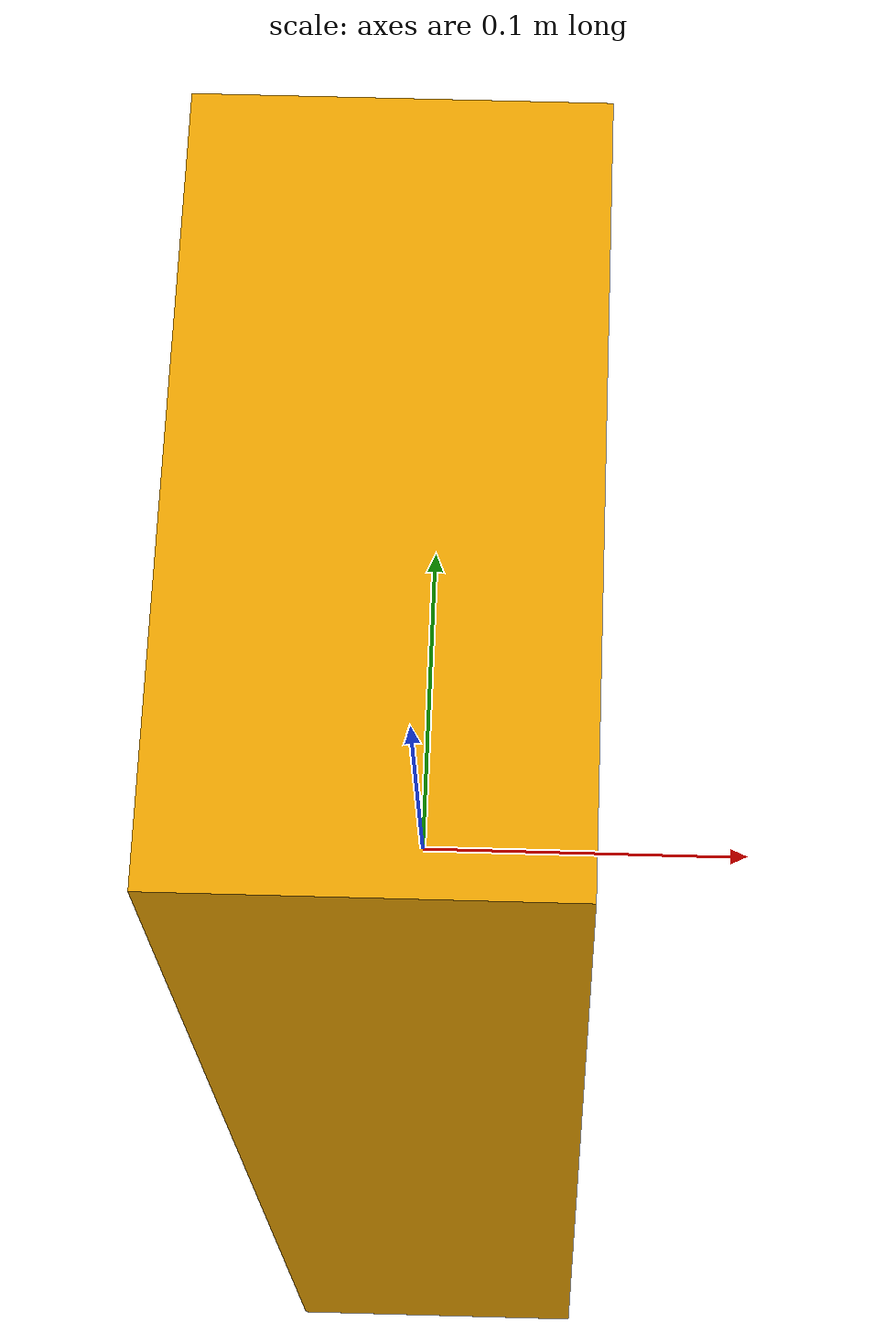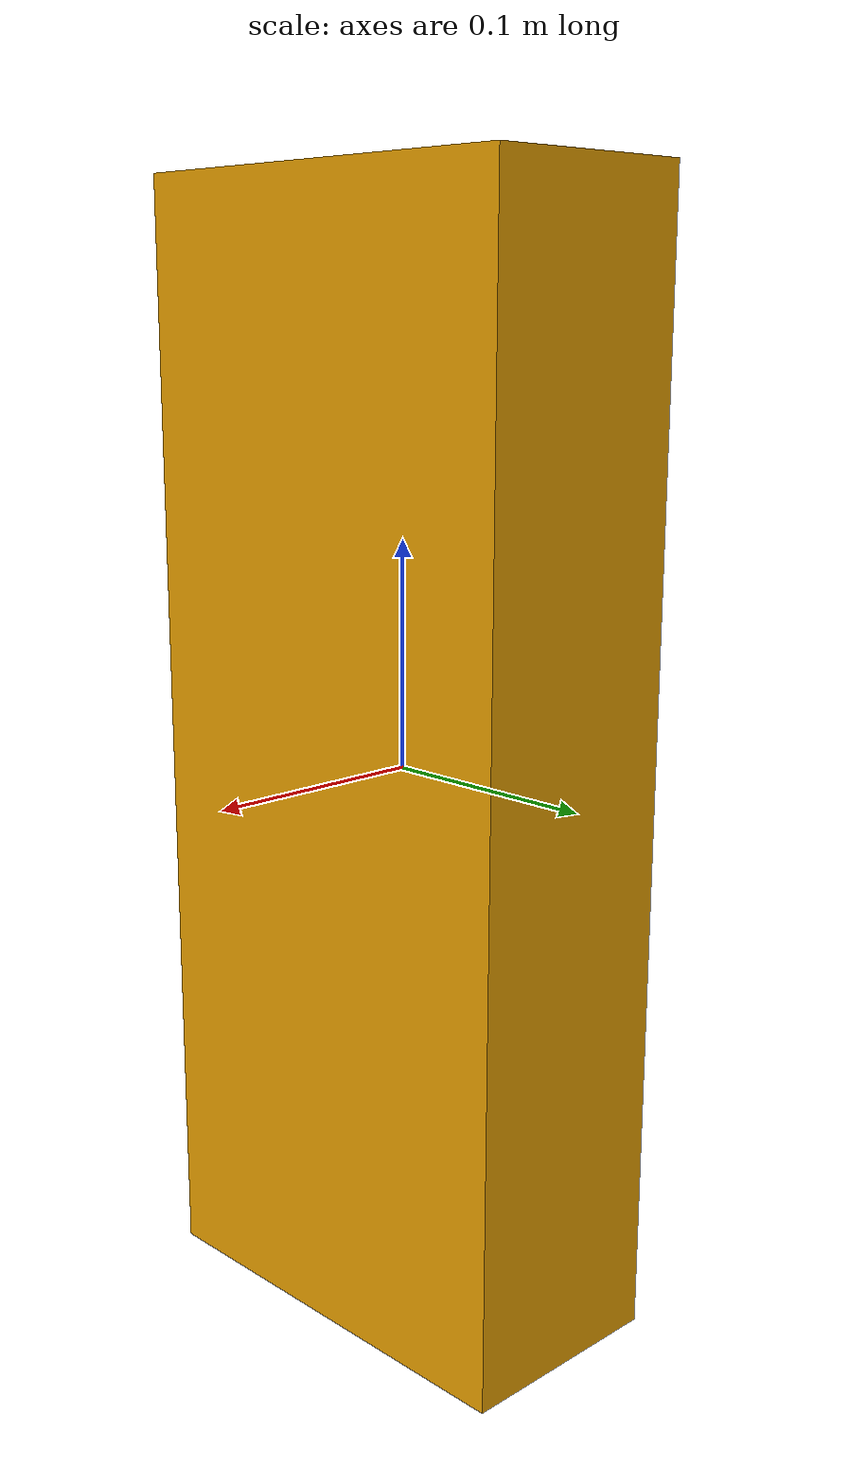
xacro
<?xml version="1.0"?>
<robot xmlns:xacro="http://www.ros.org/wiki/xacro" name="robot">

    <xacro:macro name="cuboid_inertia" params="mass depth width height">
     <inertia ixx="${1/12 * mass * ((width * width) + (height * height))}" ixy="0" ixz="0"
           iyy="${1/12 * mass * ((depth * depth) + (height * height))}" iyz="0"
           izz="${1/12 * mass * ((width * width) + (depth * depth))}" />
     </xacro:macro>

    <link name="main">
        <visual>
            <geometry>
                <box size="0.1 0.2 0.5"/>
            </geometry>
        </visual>
        <collision>
            <geometry>
                <box size="0.1 0.2 0.5"/>
            </geometry>
        </collision>
        <inertial>
            <mass value="12"/>
            <origin xyz="0 0 ${0.5*0.5}" rpy="0 0 0"/>
            <xacro:cuboid_inertia mass="1" depth="0.1" width="0.2" height="0.5"/>
        </inertial>
    </link>

</robot>
